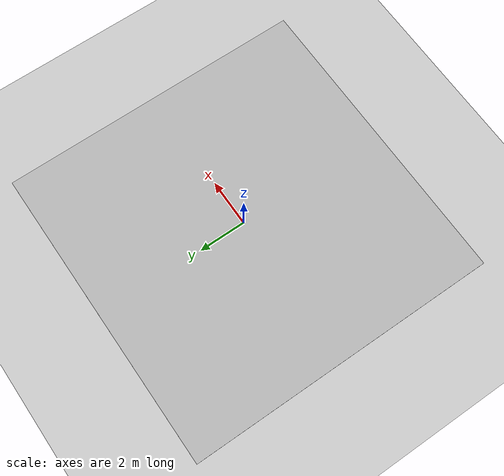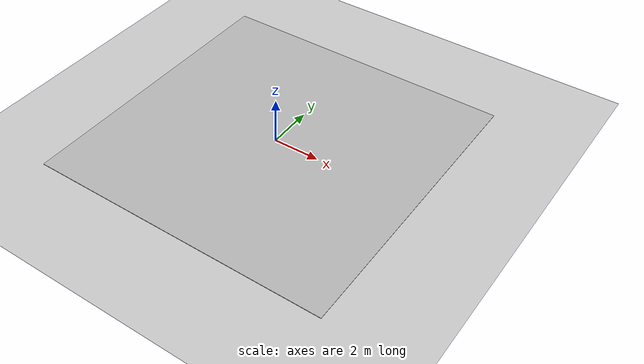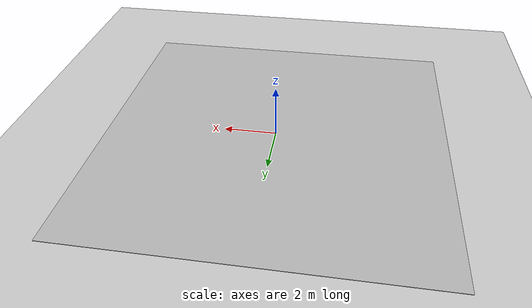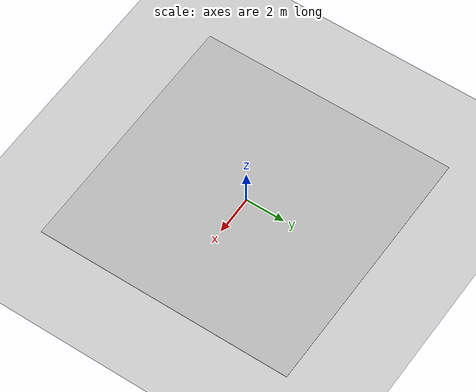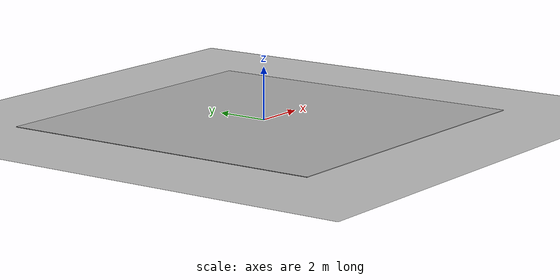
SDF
<?xml version="1.0" ?>
<sdf version="1.6">
  <world name="default">

    <include>
      <uri>model://sun</uri>
    </include>

    <include>
      <uri>model://asphalt_plane</uri>
    </include>

    <include>
      <uri>model://circleroad</uri>
      <pose>0 0 0.05 0 0 0</pose>
    </include>

  </world>
</sdf>

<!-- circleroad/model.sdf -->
<sdf version="1.5">
  <model name="circleroad">
    <static>true</static>
    <link name="link">
      <collision name="collision">
        <geometry>
          <box>
            <size>13 13 .02</size>
          </box>
        </geometry>
      </collision>
      <visual name="visual">
        <cast_shadows>false</cast_shadows>
        <geometry>
          <box>
            <size>13 13 .02</size>
          </box>
        </geometry>
        <material>
          <script>
            <uri>model://circleroad/materials/scripts</uri>
            <uri>model://circleroad/materials/textures</uri>
            <name>vrc/floor</name>
          </script>
        </material>
      </visual>
    </link>
  </model>
</sdf>
